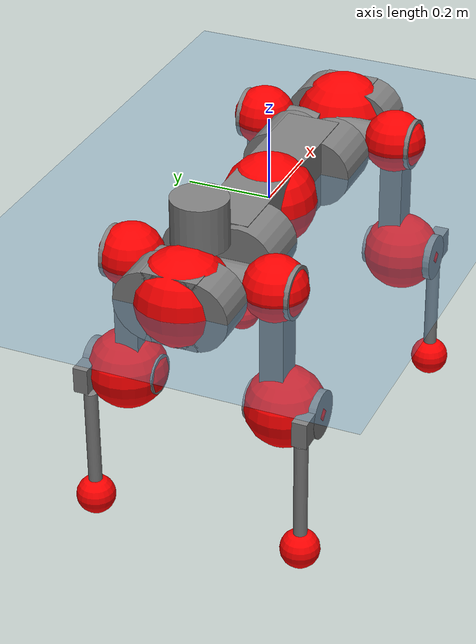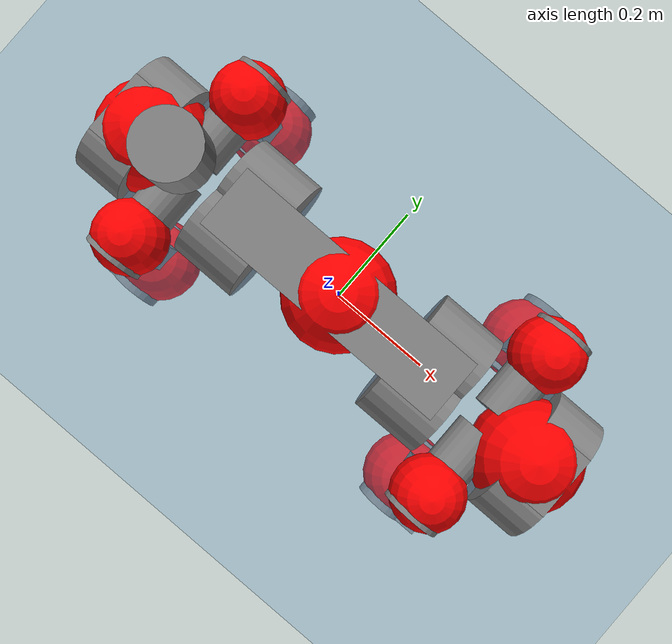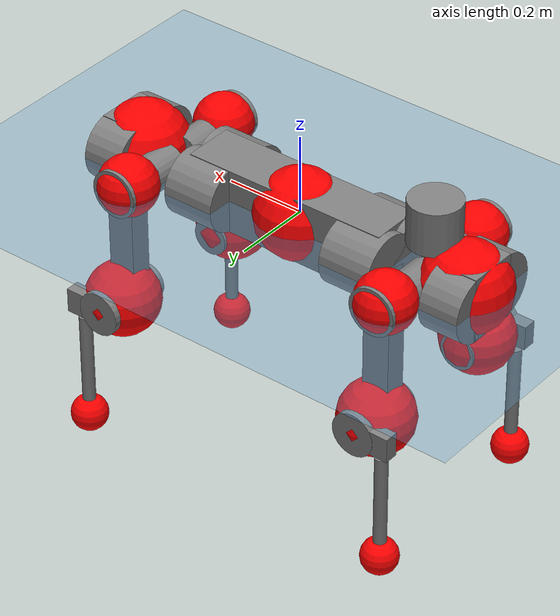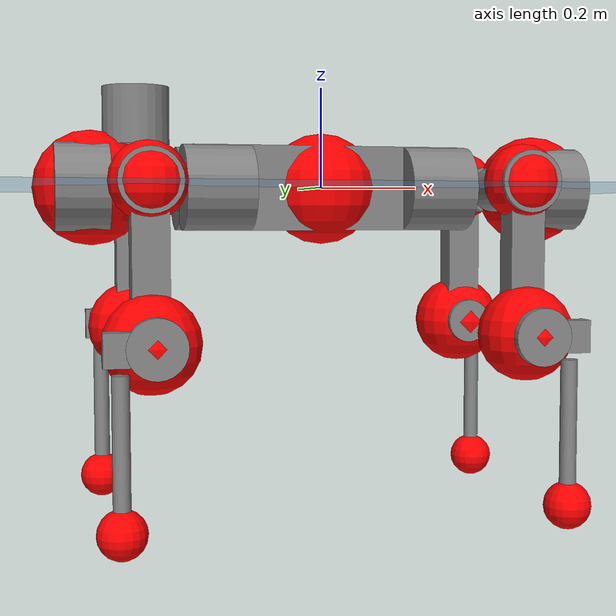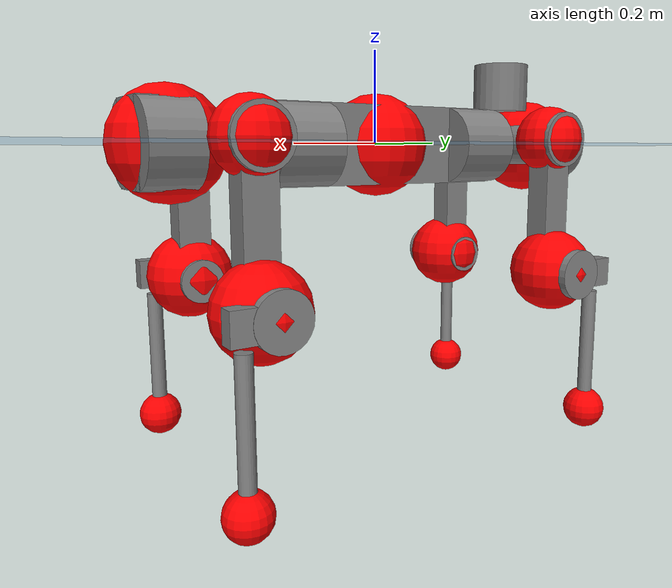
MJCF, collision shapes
<mujoco model="anymal_c">
  <compiler angle="radian" assetdir="assets" balanceinertia="true" inertiafromgeom="false"/>

  <option timestep="0.005" density="1.2" viscosity="2e-05"/>

  <size nkey="1"/>

  <visual>
    <quality shadowsize="8192"/>
    <map shadowclip="0.5"/>
  </visual>

  <default>
    <default class="/">
      <material specular="0" shininess="0.25"/>
      <geom contype="0" conaffinity="0" group="1" solref="-1000 -80"/>
      <site size="0.01 0.005 0.005" group="5"/>
      <general forcelimited="true" forcerange="-80 80" biastype="affine" gainprm="80" biasprm="0 -80 -2"/>
      <default class="anymal_c">
        <joint armature="0.01" damping="0.01" frictionloss="0.1"/>
        <default class="visual">
          <geom type="mesh" group="2"/>
          <default class="visual_zflip"/>
        </default>
        <default class="collision">
          <geom type="cylinder" group="3"/>
          <default class="foot">
            <geom size="0.03 0 0" type="sphere" condim="6" priority="1" friction="0.8 0.02 0.01" solimp="0.015 1 0.03"/>
          </default>
        </default>
      </default>
      <default class="reward_collision_sphere">
        <geom group="5" rgba="1 0 0 1"/>
      </default>
    </default>
  </default>

  <asset>
    <texture type="skybox" colorspace="auto" name="//unnamed_texture_0" builtin="gradient" rgb1="0.95 0.95 0.95" rgb2="0.95 0.95 0.95" width="100" height="600"/>
    <texture type="2d" colorspace="auto" name="texplane" builtin="checker" rgb1="0.345 0.575 0.748" rgb2="0.345 0.575 0.748" markrgb="1 1 1" width="512" height="512"/>
    <texture type="2d" colorspace="linear" name="base" file="base.png"/>
    <texture type="2d" colorspace="linear" name="top_shell" file="top_shell.png"/>
    <texture type="2d" colorspace="linear" name="bottom_shell" file="bottom_shell.png"/>
    <texture type="2d" colorspace="linear" name="remote" file="remote.png"/>
    <texture type="2d" colorspace="linear" name="hatch" file="hatch.png"/>
    <texture type="2d" colorspace="linear" name="handle" file="handle.png"/>
    <texture type="2d" colorspace="linear" name="face" file="face.png"/>
    <texture type="2d" colorspace="linear" name="battery" file="battery.png"/>
    <texture type="2d" colorspace="linear" name="lidar_cage" file="lidar_cage.png"/>
    <texture type="2d" colorspace="linear" name="depth_camera" file="depth_camera.png"/>
    <texture type="2d" colorspace="linear" name="wide_angle_camera" file="wide_angle_camera.png"/>
    <texture type="2d" colorspace="linear" name="lidar" file="lidar.png"/>
    <texture type="2d" colorspace="linear" name="drive" file="drive.png"/>
    <texture type="2d" colorspace="linear" name="hip_l" file="hip_l.png"/>
    <texture type="2d" colorspace="linear" name="shank_l" file="shank_l.png"/>
    <texture type="2d" colorspace="linear" name="foot" file="foot.png"/>
    <texture type="2d" colorspace="linear" name="thigh" file="thigh.png"/>
    <texture type="2d" colorspace="linear" name="shank_r" file="shank_r.png"/>
    <texture type="2d" colorspace="linear" name="hip_r" file="hip_r.png"/>
    <material name="MatPlane" class="/" texture="texplane" texuniform="true" texrepeat="2 2" specular="0.9" shininess="0.5"/>
    <material name="black_plastic" class="/" rgba="0.007 0.007 0.007 1"/>
    <material name="green" class="/" rgba="0.052 0.178 0.033 1"/>
    <material name="red" class="/" rgba="0.178 0.006 0.005 1"/>
    <material name="yellow" class="/" rgba="0.178 0.119 0.006 1"/>
    <material name="lwl" class="/" rgba="0.8 0.8 0.8 1"/>
    <material name="base" class="/" texture="base"/>
    <material name="top_shell" class="/" texture="top_shell"/>
    <material name="bottom_shell" class="/" texture="bottom_shell"/>
    <material name="hip_l" class="/" texture="hip_l"/>
    <material name="thigh" class="/" texture="thigh"/>
    <material name="shank_l" class="/" texture="shank_l"/>
    <material name="foot" class="/" texture="foot"/>
    <material name="hip_r" class="/" texture="hip_r"/>
    <material name="shank" class="/" texture="shank_r"/>
    <material name="hatch" class="/" texture="hatch"/>
    <material name="remote" class="/" texture="remote"/>
    <material name="handle" class="/" texture="handle"/>
    <material name="face" class="/" texture="face"/>
    <material name="depth_camera" class="/" texture="depth_camera"/>
    <material name="wide_angle_camera" class="/" texture="wide_angle_camera"/>
    <material name="battery" class="/" texture="battery"/>
    <material name="lidar_cage" class="/" texture="lidar_cage"/>
    <material name="lidar" class="/" texture="lidar"/>
    <material name="drive" class="/" texture="drive"/>
    <mesh name="base_0" class="/" file="base_0.obj"/>
    <mesh name="base_1" class="/" file="base_1.obj"/>
    <mesh name="base_2" class="/" file="base_2.obj"/>
    <mesh name="base_3" class="/" file="base_3.obj"/>
    <mesh name="base_4" class="/" file="base_4.obj"/>
    <mesh name="base_5" class="/" file="base_5.obj"/>
    <mesh name="top_shell" class="/" file="top_shell.obj"/>
    <mesh name="bottom_shell" class="/" file="bottom_shell.obj"/>
    <mesh name="remote" class="/" file="remote.obj"/>
    <mesh name="handle" class="/" file="handle.obj"/>
    <mesh name="face" class="/" file="face.obj"/>
    <mesh name="wide_angle_camera" class="/" file="wide_angle_camera.obj"/>
    <mesh name="depth_camera" class="/" file="depth_camera.obj"/>
    <mesh name="battery" class="/" file="battery.obj"/>
    <mesh name="lidar_cage" class="/" file="lidar_cage.obj"/>
    <mesh name="lidar" class="/" file="lidar.obj"/>
    <mesh name="drive" class="/" file="drive.obj"/>
    <mesh name="hip_l" class="/" file="hip_l.obj"/>
    <mesh name="thigh" class="/" file="thigh.obj"/>
    <mesh name="shank_l" class="/" file="shank_l.obj"/>
    <mesh name="foot" class="/" file="foot.obj"/>
    <mesh name="hip_r" class="/" file="hip_r.obj"/>
    <mesh name="hatch" class="/" file="hatch.obj"/>
    <mesh name="shank_r" class="/" file="shank_r.obj"/>
  </asset>

  <worldbody>
    <geom name="floor" class="/" size="100 100 0.125" type="plane" group="0" material="MatPlane"/>
    <light name="toplight_shadow" class="/" pos="0 0 5" dir="0.0990148 0.0990148 -0.990148" type="directional" ambient="0.04 0.04 0.04" diffuse="0.55 0.55 0.55" specular="0.12 0.12 0.12"/>
    <light name="toplight_fill" class="/" pos="0 0 5" dir="0.0990148 0.0990148 -0.990148" type="directional" castshadow="false" ambient="0.04 0.04 0.04" diffuse="0.3 0.3 0.3" specular="0.08 0.08 0.08"/>
    <body name="trunk" childclass="anymal_c" pos="-0.000979276 0.000254018 -0.00279588" quat="1 -0.000437461 -0.000277587 -0.000117176">
      <inertial pos="-0.00043683 -0.00269236 0.0522884" quat="0.500036 0.497793 0.500729 0.501434" mass="15.5408" diaginertia="0.745502 0.120323 0.283923"/>
      <joint name="//unnamed_joint_0" type="free" armature="0" damping="0" frictionloss="0"/>
      <geom name="//unnamed_geom_1" class="visual" material="green" mesh="base_0"/>
      <geom name="//unnamed_geom_2" class="visual" material="yellow" mesh="base_1"/>
      <geom name="//unnamed_geom_3" class="visual" material="red" mesh="base_2"/>
      <geom name="//unnamed_geom_4" class="visual" material="black_plastic" mesh="base_3"/>
      <geom name="//unnamed_geom_5" class="visual" material="lwl" mesh="base_4"/>
      <geom name="//unnamed_geom_6" class="visual" material="base" mesh="base_5"/>
      <geom name="trunk_1" class="collision" size="0.268796 0.0648819 0.0834196" type="box"/>
      <geom name="trunk_2" class="collision" size="0.0834196 0.0671991" pos="0.222078 0.0500318 0" quat="0.707107 0 0.707107 0"/>
      <geom name="trunk_3" class="collision" size="0.0834196 0.0671991" pos="-0.222078 0.0500318 0" quat="0.707107 0 0.707107 0"/>
      <geom name="trunk_4" class="collision" size="0.0834196 0.0671991" pos="0.222078 -0.0500318 0" quat="0.707107 0 0.707107 0"/>
      <geom name="trunk_5" class="collision" size="0.0834196 0.0671991" pos="-0.222078 -0.0500318 0" quat="0.707107 0 0.707107 0"/>
      <geom name="//unnamed_geom_12" class="visual" material="top_shell" mesh="top_shell"/>
      <geom name="//unnamed_geom_13" class="visual" material="bottom_shell" mesh="bottom_shell"/>
      <geom name="//unnamed_geom_14" class="visual" material="remote" mesh="remote"/>
      <geom name="//unnamed_geom_15" class="visual" material="handle" mesh="handle"/>
      <geom name="//unnamed_geom_16" class="visual" pos="0.423225 0 0" quat="1 0 0 0" material="face" mesh="face"/>
      <geom name="trunk_6" class="collision" size="0.0509786 0.0648819 0.0834196" pos="0.479383 0 0" type="box"/>
      <geom name="//unnamed_geom_18" class="collision" size="0.0834196 0.0509786" pos="0.479383 0.0500318 0" quat="0.707107 0 0.707107 0"/>
      <geom name="//unnamed_geom_19" class="collision" size="0.0834196 0.0509786" pos="0.479383 -0.0500318 0" quat="0.707107 0 0.707107 0"/>
      <geom name="//unnamed_geom_20" class="visual" pos="0.471369 0 -0.030691" quat="0.965926 0 0.258819 0" material="depth_camera" mesh="depth_camera"/>
      <geom name="//unnamed_geom_21" class="visual" pos="0.523799 0 0.0156416" material="wide_angle_camera" mesh="wide_angle_camera"/>
      <geom name="//unnamed_geom_22" class="visual_zflip" pos="-0.423225 0 0" quat="0 0 0 1" material="face" mesh="face"/>
      <geom name="trunk_7" class="collision" size="0.0509786 0.0648819 0.0834196" pos="-0.479383 0 0" quat="0 0 0 1" type="box"/>
      <geom name="//unnamed_geom_24" class="collision" size="0.0834196 0.0509786" pos="-0.479383 -0.0500318 0" quat="0 -0.707107 0 0.707107"/>
      <geom name="//unnamed_geom_25" class="collision" size="0.0834196 0.0509786" pos="-0.479383 0.0500318 0" quat="0 -0.707107 0 0.707107"/>
      <geom name="//unnamed_geom_26" class="visual" pos="-0.471369 0 -0.030691" quat="0 -0.258819 0 0.965926" material="depth_camera" mesh="depth_camera"/>
      <geom name="//unnamed_geom_27" class="visual_zflip" pos="-0.523799 0 0.0156416" quat="0 0 0 1" material="wide_angle_camera" mesh="wide_angle_camera"/>
      <geom name="//unnamed_geom_28" class="visual" material="battery" mesh="battery"/>
      <geom name="//unnamed_geom_29" class="visual" pos="0 0.0506306 0.0301723" quat="0.683013 -0.183013 0.183013 0.683013" material="depth_camera" mesh="depth_camera"/>
      <geom name="//unnamed_geom_30" class="visual" pos="0 -0.0506306 0.0301723" quat="0.683013 0.183013 0.183013 -0.683013" material="depth_camera" mesh="depth_camera"/>
      <geom name="//unnamed_geom_31" class="visual" pos="-0.371662 0 0.0767974" quat="1 0 0 0" material="lidar_cage" mesh="lidar_cage"/>
      <geom name="trunk_8" class="collision" size="0.0648819 0.0556131" pos="-0.371662 0 0.139489"/>
      <geom name="//unnamed_geom_33" class="visual" pos="-0.371662 -0.000120341 0.148579" quat="0.707107 0 0 -0.707107" material="lidar" mesh="lidar"/>
      <geom name="//unnamed_geom_34" class="visual" pos="0.306213 0.0744503 -5.69464e-09" quat="0.258819 0.965926 0 0" material="drive" mesh="drive"/>
      <geom name="//unnamed_geom_35" class="visual" pos="0.306213 -0.0744503 5.69464e-09" quat="0.258819 -0.965926 0 0" material="drive" mesh="drive"/>
      <geom name="//unnamed_geom_36" class="visual" pos="-0.306213 0.0744503 5.69464e-09" quat="0 0 0.965926 -0.258819" material="drive" mesh="drive"/>
      <geom name="//unnamed_geom_37" class="visual" pos="-0.306213 -0.0744503 -5.69464e-09" quat="0 0 -0.965926 -0.258819" material="drive" mesh="drive"/>
      <geom name="//unnamed_geom_38" class="visual" pos="0.118442 0 0.076275" quat="1 0 0 0" material="hatch" mesh="hatch"/>
      <geom name="//unnamed_geom_39" class="reward_collision_sphere" size="0.111226"/>
      <geom name="//unnamed_geom_40" class="reward_collision_sphere" size="0.111226" pos="0.459472 0 0"/>
      <geom name="//unnamed_geom_41" class="reward_collision_sphere" size="0.111226" pos="-0.459472 0 0"/>
      <site name="imu" pos="0.244943 0.0110737 0.0612643" size="0.00926884"/>
      <camera name="track" pos="0 -1.42948 0" quat="0.707107 0.707107 0 0" mode="trackcom"/>
      <camera name="ego_camera" pos="0.459472 0 -0.0417945" quat="-0.5 -0.5 0.5 0.5"/>
      <body name="LF_HIP" pos="0.305838 0.0749103 -0.000485293" quat="0.257747 0.966212 0.000318805 0.000162197">
        <inertial pos="0.0603977 -0.0127097 -0.00755086" quat="-0.139129 0.709429 -0.129137 0.678732" mass="2.15601" diaginertia="0.00633849 0.000915241 0.00415248"/>
        <joint name="LF_HAA" pos="0 0 0" axis="0.999861 -0.0132791 0.0101303" range="-0.703736 0.534203" armature="0.0102911" damping="0.00194055" frictionloss="0.0960369"/>
        <geom name="//unnamed_geom_42" class="visual" pos="0 -0.00033499 5.50218e-05" quat="0.258819 -0.965926 0 0" material="hip_l" mesh="hip_l"/>
        <geom name="//unnamed_geom_43" class="visual" pos="0.0611609 -0.0701937 -0.0429681" quat="0.183013 -0.683013 0.683013 0.183013" material="drive" mesh="drive"/>
        <geom name="//unnamed_geom_44" class="collision" size="0.0463442 0.0648819" pos="0.0611609 -0.00854815 -0.00721478" quat="-0.353553 -0.612372 0.612372 -0.353553"/>
        <body name="LF_THIGH" pos="0.0614896 -0.0523552 -0.0441644" quat="0.182943 -0.68246 0.683594 0.182973">
          <inertial pos="0.0336004 0.000473729 -0.254246" quat="0.993266 -0.0045449 -0.0803662 0.0833215" mass="2.50364" diaginertia="0.0322853 0.00553898 0.00521952"/>
          <joint name="LF_HFE" pos="0 0 0" axis="0.999923 0.00734512 -0.00999699" stiffness="0.000772796" range="-3.14879 3.12382" armature="0.00890182" damping="0.0056498" frictionloss="0.0807621"/>
          <geom name="//unnamed_geom_45" class="visual" pos="0.00609435 9.60327e-06 0" quat="0.707107 0 0 -0.707107" material="thigh" mesh="thigh"/>
          <geom name="//unnamed_geom_46" class="collision" size="0.0602475 0.0370754" pos="0.040842 0 0" quat="0.5 0.5 -0.5 -0.5"/>
          <geom name="//unnamed_geom_47" class="collision" size="0.0347582 0.0278065 0.130982" pos="0.0306315 0 -0.147654" quat="0.707107 0 0 -0.707107" type="box"/>
          <geom name="//unnamed_geom_48" class="visual" pos="0.102411 0 -0.297786" quat="1 0 0 0" material="drive" mesh="drive"/>
          <geom name="//unnamed_geom_49" class="collision" size="0.0463442 0.0648819" pos="0.0309378 0 -0.297786" quat="0.707107 0 0.707107 0"/>
          <geom name="//unnamed_geom_50" class="reward_collision_sphere" size="0.0741507" pos="0.0255262 0 0"/>
          <body name="LF_SHANK" pos="0.105846 -0.00329148 -0.299981" quat="0.999999 -0.00039439 -0.00137527 -0.000162444">
            <inertial pos="0.00590976 -0.0438314 -0.0841849" quat="0.992925 -0.115987 -0.00104275 -0.0254001" mass="0.456403" diaginertia="0.0109555 0.00171456 0.00135985"/>
            <joint name="LF_KFE" pos="0 0 0" axis="0.999994 -0.0009308 0.00334284" stiffness="0.000793295" range="-3.19549 3.1629" armature="0.0102846" damping="0" frictionloss="0.105028"/>
            <geom name="//unnamed_geom_51" class="visual" pos="0.00198723 0.010596 0" quat="0.707107 0 0 -0.707107" material="shank_l" mesh="shank_l"/>
            <geom name="LF_kfe_act" class="collision" size="0.0556131 0.0185377" pos="0.020421 0 0" quat="0.5 0.5 -0.5 -0.5"/>
            <geom name="//unnamed_geom_53" class="collision" size="0.0532949 0.0312823 0.0176108" pos="0.020421 -0.0410969 0" quat="0.5 0.5 -0.5 -0.5" type="box"/>
            <geom name="//unnamed_geom_54" class="visual" pos="0.0133242 -0.0594468 -0.353132" quat="0.382683 0 0 -0.92388" material="foot" mesh="foot"/>
            <geom name="LF_calf" class="collision" size="0.0162205 0.130924" pos="0.0133247 -0.0628614 -0.176566" quat="0.707107 0 0 -0.707107"/>
            <geom name="LF_foot" class="foot" size="0.0275952" pos="0.0133247 -0.0628614 -0.329623" quat="0.707107 0 0 -0.707107"/>
            <geom name="//unnamed_geom_57" class="reward_collision_sphere" size="0.0926884" pos="-0.0510525 0 0"/>
            <geom name="//unnamed_geom_58" class="reward_collision_sphere" size="0.0463442" pos="0.0133247 -0.0628614 -0.329623"/>
            <site name="LF_foot" class="foot" pos="0.0133247 -0.0628614 -0.329623" quat="0.707107 0 0 -0.707107" size="0.00926884"/>
          </body>
        </body>
      </body>
      <body name="RF_HIP" pos="0.304246 -0.0755495 -0.00135138" quat="0.258942 -0.965893 -3.74248e-05 0.00024571">
        <inertial pos="0.0605745 0.012573 -0.00974527" quat="0.137326 0.678145 0.128637 0.710432" mass="2.28819" diaginertia="0.00656961 0.00097695 0.00422041"/>
        <joint name="RF_HAA" pos="0 0 0" axis="0.999969 0.00539509 -0.00571261" range="-0.540916 0.705019" armature="0.00811431" damping="0.00787972" frictionloss="0.0808783"/>
        <geom name="//unnamed_geom_59" class="visual" pos="0 0.000334987 5.50217e-05" quat="0.258819 0.965926 0 0" material="hip_r" mesh="hip_r"/>
        <geom name="//unnamed_geom_60" class="visual" pos="0.0611609 0.0701937 -0.0429681" quat="0.183013 0.683013 0.683013 -0.183013" material="drive" mesh="drive"/>
        <geom name="//unnamed_geom_61" class="collision" size="0.0463442 0.0648819" pos="0.0611609 0.00854815 -0.00721478" quat="-0.353553 0.612372 0.612372 0.353553"/>
        <body name="RF_THIGH" pos="0.0599588 0.0542707 -0.0462736" quat="0.182997 0.683069 0.682948 -0.183059">
          <inertial pos="0.0319127 -0.0010236 -0.255334" quat="0.993303 -0.00723146 -0.0860644 0.0767417" mass="2.29296" diaginertia="0.0319782 0.00555876 0.00514761"/>
          <joint name="RF_HFE" pos="0 0 0" axis="0.999952 0.00786611 -0.0058794" stiffness="0.00540391" range="-3.10496 3.19607" armature="0.00935708" damping="0" frictionloss="0.098865"/>
          <geom name="//unnamed_geom_62" class="visual" pos="0.00609435 9.60327e-06 0" quat="0.707107 0 0 -0.707107" material="thigh" mesh="thigh"/>
          <geom name="//unnamed_geom_63" class="collision" size="0.0602475 0.0370754" pos="0.040842 0 0" quat="0.5 0.5 0.5 0.5"/>
          <geom name="//unnamed_geom_64" class="collision" size="0.0347582 0.0278065 0.130982" pos="0.0306315 0 -0.147654" quat="0.707107 0 0 0.707107" type="box"/>
          <geom name="//unnamed_geom_65" class="visual" pos="0.102411 0 -0.297786" quat="1 0 0 0" material="drive" mesh="drive"/>
          <geom name="//unnamed_geom_66" class="collision" size="0.0463442 0.0648819" pos="0.0309378 0 -0.297786" quat="0.707107 0 0.707107 0"/>
          <geom name="//unnamed_geom_67" class="reward_collision_sphere" size="0.0741507" pos="0.0255262 0 0"/>
          <body name="RF_SHANK" pos="0.104374 -0.00192969 -0.296082" quat="1 -0.000197265 0.000299897 -0.000244589">
            <inertial pos="0.00533465 0.0443677 -0.0817472" quat="0.991492 0.128085 -0.000652234 0.0231858" mass="0.476037" diaginertia="0.0110481 0.00166959 0.00138946"/>
            <joint name="RF_KFE" pos="0 0 0" axis="0.999979 -0.00493897 0.00414418" range="-3.18189 3.18877" armature="0.0089699" damping="0.00288178" frictionloss="0.083068"/>
            <geom name="//unnamed_geom_68" class="visual" pos="0.00198722 -0.010596 0" quat="0.707107 0 0 0.707107" material="shank" mesh="shank_r"/>
            <geom name="RF_kfe_act" class="collision" size="0.0556131 0.0185377" pos="0.020421 0 0" quat="0.5 0.5 0.5 0.5"/>
            <geom name="//unnamed_geom_70" class="collision" size="0.0532949 0.0312823 0.0176108" pos="0.020421 0.0410969 0" quat="0.5 0.5 0.5 0.5" type="box"/>
            <geom name="//unnamed_geom_71" class="visual" pos="0.0133252 0.0594468 -0.353132" quat="0.382683 0 0 0.92388" material="foot" mesh="foot"/>
            <geom name="RF_calf" class="collision" size="0.0162205 0.130924" pos="0.0133247 0.0628614 -0.176566" quat="0.707107 0 0 0.707107"/>
            <geom name="RF_foot" class="foot" size="0.0270426" pos="0.0133247 0.0628614 -0.329623" quat="0.707107 0 0 0.707107"/>
            <geom name="//unnamed_geom_74" class="reward_collision_sphere" size="0.0926884" pos="-0.0510525 0 0"/>
            <geom name="//unnamed_geom_75" class="reward_collision_sphere" size="0.0463442" pos="0.0133247 0.0628614 -0.329623"/>
            <site name="RF_foot" class="foot" pos="0.0133247 0.0628614 -0.329623" quat="0.707107 0 0 0.707107" size="0.00926884"/>
          </body>
        </body>
      </body>
      <body name="LH_HIP" pos="-0.307874 0.076195 1.58343e-05" quat="-7.68551e-05 2.05334e-05 0.965906 -0.258891">
        <inertial pos="0.0598191 0.0131434 -0.00929944" quat="0.123388 0.677992 0.132695 0.712387" mass="2.2152" diaginertia="0.00620948 0.000909252 0.00383177"/>
        <joint name="LH_HAA" pos="0 0 0" axis="0.999976 -0.00137345 0.00677664" range="-0.472454 0.695901" armature="0.0079737" damping="0" frictionloss="0.0941338"/>
        <geom name="//unnamed_geom_76" class="visual" pos="0 0.000334987 5.50217e-05" quat="-0.258819 -0.965926 0 0" material="hip_r" mesh="hip_r"/>
        <geom name="//unnamed_geom_77" class="visual" pos="0.0611609 0.0701937 -0.0429681" quat="0.183013 0.683013 0.683013 -0.183013" material="drive" mesh="drive"/>
        <geom name="//unnamed_geom_78" class="collision" size="0.0463442 0.0648819" pos="0.0611609 0.00854815 -0.00721478" quat="-0.353553 0.612372 0.612372 0.353553"/>
        <body name="LH_THIGH" pos="0.0577502 0.0502199 -0.044434" quat="0.18308 0.682966 0.682997 -0.183179">
          <inertial pos="0.031628 0.00267242 -0.255534" quat="0.992391 -0.00756171 -0.0844891 0.0892401" mass="2.43758" diaginertia="0.0336196 0.00539303 0.00524009"/>
          <joint name="LH_HFE" pos="0 0 0" axis="0.999933 -0.00330843 0.011114" stiffness="0.00829726" range="-3.13619 3.16074" armature="0.00826097" damping="0" frictionloss="0.0973637"/>
          <geom name="//unnamed_geom_79" class="visual" pos="0.00609435 9.60327e-06 0" quat="0.707107 0 0 -0.707107" material="thigh" mesh="thigh"/>
          <geom name="//unnamed_geom_80" class="collision" size="0.0602475 0.0370754" pos="0.040842 0 0" quat="0.5 0.5 -0.5 -0.5"/>
          <geom name="//unnamed_geom_81" class="collision" size="0.0347582 0.0278065 0.130982" pos="0.0306315 0 -0.147654" quat="0.707107 0 0 -0.707107" type="box"/>
          <geom name="//unnamed_geom_82" class="visual" pos="0.102411 0 -0.297786" quat="1 0 0 0" material="drive" mesh="drive"/>
          <geom name="//unnamed_geom_83" class="collision" size="0.0463442 0.0648819" pos="0.0309378 0 -0.297786" quat="0.707107 0 0.707107 0"/>
          <geom name="//unnamed_geom_84" class="reward_collision_sphere" size="0.0741507" pos="0.0255262 0 0"/>
          <body name="LH_SHANK" pos="0.099329 -0.000781827 -0.299618" quat="1 -0.000159307 0.000437569 -0.000820077">
            <inertial pos="0.00564143 0.0434867 -0.084536" quat="0.993057 0.113247 0.000224794 0.0318221" mass="0.471482" diaginertia="0.0112347 0.00170922 0.00137009"/>
            <joint name="LH_KFE" pos="0 0 0" axis="0.999775 0.00652572 -0.020191" range="-3.16115 3.1432" armature="0.00807311" damping="0.00735493" frictionloss="0.105319"/>
            <geom name="//unnamed_geom_85" class="visual" pos="0.00198722 -0.010596 0" quat="-0.707107 0 0 -0.707107" material="shank" mesh="shank_r"/>
            <geom name="LH_kfe_act" class="collision" size="0.0556131 0.0185377" pos="0.020421 0 0" quat="0.5 0.5 -0.5 -0.5"/>
            <geom name="//unnamed_geom_87" class="collision" size="0.0532949 0.0312823 0.0176108" pos="0.020421 0.0410969 0" quat="0.5 0.5 -0.5 -0.5" type="box"/>
            <geom name="//unnamed_geom_88" class="visual" pos="0.0133252 0.0594468 -0.353132" quat="-0.382683 0 0 -0.92388" material="foot" mesh="foot"/>
            <geom name="LH_calf" class="collision" size="0.0162205 0.130924" pos="0.0133247 0.0628614 -0.176566" quat="0.707107 0 0 -0.707107"/>
            <geom name="LH_foot" class="foot" size="0.0313811" pos="0.0133247 0.0628614 -0.329623" quat="0.707107 0 0 -0.707107"/>
            <geom name="//unnamed_geom_91" class="reward_collision_sphere" size="0.0926884" pos="-0.0510525 0 0"/>
            <geom name="//unnamed_geom_92" class="reward_collision_sphere" size="0.0463442" pos="0.0133247 0.0628614 -0.329623"/>
            <site name="LH_foot" class="foot" pos="0.0133247 0.0628614 -0.329623" quat="0.707107 0 0 -0.707107" size="0.00926884"/>
          </body>
        </body>
      </body>
      <body name="RH_HIP" pos="-0.306249 -0.0772345 -0.000824353" quat="-0.000351056 0.000147175 -0.965599 -0.260035">
        <inertial pos="0.0554926 -0.011467 -0.00622955" quat="-0.128604 0.709238 -0.135228 0.679821" mass="2.16006" diaginertia="0.00636362 0.000890505 0.00388601"/>
        <joint name="RH_HAA" pos="0 0 0" axis="0.999999 0.000654144 -0.0015457" range="-0.777588 0.531061" armature="0.00909644" damping="0" frictionloss="0.0936699"/>
        <geom name="//unnamed_geom_93" class="visual" pos="0 -0.00033499 5.50218e-05" quat="-0.258819 0.965926 0 0" material="hip_l" mesh="hip_l"/>
        <geom name="//unnamed_geom_94" class="visual" pos="0.0611609 -0.0701937 -0.0429681" quat="-0.183013 0.683013 -0.683013 -0.183013" material="drive" mesh="drive"/>
        <geom name="//unnamed_geom_95" class="collision" size="0.0463442 0.0648819" pos="0.0611609 -0.00854815 -0.00721478" quat="0.353553 0.612372 -0.612372 0.353553"/>
        <body name="RH_THIGH" pos="0.0601035 -0.0537675 -0.0425427" quat="-0.182988 0.682952 -0.68304 -0.18316">
          <inertial pos="0.034671 0.000143258 -0.2574" quat="0.993055 -0.005085 -0.081159 0.0850271" mass="2.33771" diaginertia="0.0318156 0.00545826 0.00508432"/>
          <joint name="RH_HFE" pos="0 0 0" axis="0.999945 0.00206582 -0.0102622" stiffness="0.00130977" range="-3.15364 3.15202" armature="0.00859295" damping="0.00253479" frictionloss="0.0943355"/>
          <geom name="//unnamed_geom_96" class="visual" pos="0.00609435 9.60327e-06 0" quat="0.707107 0 0 -0.707107" material="thigh" mesh="thigh"/>
          <geom name="//unnamed_geom_97" class="collision" size="0.0602475 0.0370754" pos="0.040842 0 0" quat="0.5 0.5 0.5 0.5"/>
          <geom name="//unnamed_geom_98" class="collision" size="0.0347582 0.0278065 0.130982" pos="0.0306315 0 -0.147654" quat="0.707107 0 0 0.707107" type="box"/>
          <geom name="//unnamed_geom_99" class="visual" pos="0.102411 0 -0.297786" quat="1 0 0 0" material="drive" mesh="drive"/>
          <geom name="//unnamed_geom_100" class="collision" size="0.0463442 0.0648819" pos="0.0309378 0 -0.297786" quat="0.707107 0 0.707107 0"/>
          <geom name="//unnamed_geom_101" class="reward_collision_sphere" size="0.0741507" pos="0.0255262 0 0"/>
          <body name="RH_SHANK" pos="0.100059 0.00114043 -0.296582" quat="1 0.000257396 0.000852586 0.000249888">
            <inertial pos="0.00444672 -0.0437082 -0.0849242" quat="0.993633 -0.108466 0.00977809 -0.0288649" mass="0.457225" diaginertia="0.0108176 0.0017629 0.00137435"/>
            <joint name="RH_KFE" pos="0 0 0" axis="0.99998 -0.00637439 -0.00049493" stiffness="0.00985259" range="-3.10907 3.12191" armature="0.00832689" damping="0.0094956" frictionloss="0.0922624"/>
            <geom name="//unnamed_geom_102" class="visual" pos="0.00198723 0.010596 0" quat="0.707107 0 0 -0.707107" material="shank_l" mesh="shank_l"/>
            <geom name="RH_kfe_act" class="collision" size="0.0556131 0.0185377" pos="0.020421 0 0" quat="0.5 0.5 0.5 0.5"/>
            <geom name="//unnamed_geom_104" class="collision" size="0.0532949 0.0312823 0.0176108" pos="0.020421 -0.0410969 0" quat="0.5 0.5 0.5 0.5" type="box"/>
            <geom name="//unnamed_geom_105" class="visual" pos="0.0133242 -0.0594468 -0.353132" quat="0.382683 0 0 -0.92388" material="foot" mesh="foot"/>
            <geom name="RH_calf" class="collision" size="0.0162205 0.130924" pos="0.0133247 -0.0628614 -0.176566" quat="0.707107 0 0 0.707107"/>
            <geom name="RH_foot" class="foot" size="0.0231806" pos="0.0133247 -0.0628614 -0.329623" quat="0.707107 0 0 0.707107"/>
            <geom name="//unnamed_geom_108" class="reward_collision_sphere" size="0.0926884" pos="-0.0510525 0 0"/>
            <geom name="//unnamed_geom_109" class="reward_collision_sphere" size="0.0463442" pos="0.0133247 -0.0628614 -0.329623"/>
            <site name="RH_foot" class="foot" pos="0.0133247 -0.0628614 -0.329623" quat="0.707107 0 0 0.707107" size="0.00926884"/>
          </body>
        </body>
      </body>
    </body>
  </worldbody>

  <contact>
    <pair class="/" geom1="floor" geom2="LF_foot" name="//unnamed_contact_0"/>
    <pair class="/" geom1="floor" geom2="RF_foot" name="//unnamed_contact_1"/>
    <pair class="/" geom1="floor" geom2="LH_foot" name="//unnamed_contact_2"/>
    <pair class="/" geom1="floor" geom2="RH_foot" name="//unnamed_contact_3"/>
  </contact>

  <actuator>
    <general name="LF_HAA" class="/" joint="LF_HAA" forcerange="-77.7551 77.7551" gainprm="74.223" biasprm="0 -74.223 -1.75025"/>
    <general name="LF_HFE" class="/" joint="LF_HFE" forcerange="-67.675 67.675" gainprm="74.223" biasprm="0 -74.223 -1.75025"/>
    <general name="LF_KFE" class="/" joint="LF_KFE" forcerange="-75.1892 75.1892" gainprm="74.223" biasprm="0 -74.223 -1.75025"/>
    <general name="RF_HAA" class="/" joint="RF_HAA" forcerange="-67.8657 67.8657" gainprm="74.223" biasprm="0 -74.223 -1.75025"/>
    <general name="RF_HFE" class="/" joint="RF_HFE" forcerange="-82.1201 82.1201" gainprm="74.223" biasprm="0 -74.223 -1.75025"/>
    <general name="RF_KFE" class="/" joint="RF_KFE" forcerange="-67.0526 67.0526" gainprm="74.223" biasprm="0 -74.223 -1.75025"/>
    <general name="LH_HAA" class="/" joint="LH_HAA" forcerange="-74.8654 74.8654" gainprm="74.223" biasprm="0 -74.223 -1.75025"/>
    <general name="LH_HFE" class="/" joint="LH_HFE" forcerange="-67.2096 67.2096" gainprm="74.223" biasprm="0 -74.223 -1.75025"/>
    <general name="LH_KFE" class="/" joint="LH_KFE" forcerange="-76.4771 76.4771" gainprm="74.223" biasprm="0 -74.223 -1.75025"/>
    <general name="RH_HAA" class="/" joint="RH_HAA" forcerange="-73.3055 73.3055" gainprm="74.223" biasprm="0 -74.223 -1.75025"/>
    <general name="RH_HFE" class="/" joint="RH_HFE" forcerange="-68.8785 68.8785" gainprm="74.223" biasprm="0 -74.223 -1.75025"/>
    <general name="RH_KFE" class="/" joint="RH_KFE" forcerange="-82.1781 82.1781" gainprm="74.223" biasprm="0 -74.223 -1.75025"/>
  </actuator>

  <sensor>
    <gyro site="imu" name="imu_angular_velocity"/>
    <velocimeter site="imu" name="imu_linear_velocity"/>
    <framelinvel objtype="site" objname="LF_foot" name="LF_foot_global_linear_velocity"/>
    <framelinvel objtype="site" objname="RF_foot" name="RF_foot_global_linear_velocity"/>
    <framelinvel objtype="site" objname="LH_foot" name="LH_foot_global_linear_velocity"/>
    <framelinvel objtype="site" objname="RH_foot" name="RH_foot_global_linear_velocity"/>
  </sensor>

  <keyframe>
    <key name="home" qpos="0 0 0.55 1 0 0 0 0 0.4 -0.8 0 -0.4 0.8 0 -0.4 0.8 0 0.4 -0.8"/>
  </keyframe>
</mujoco>
